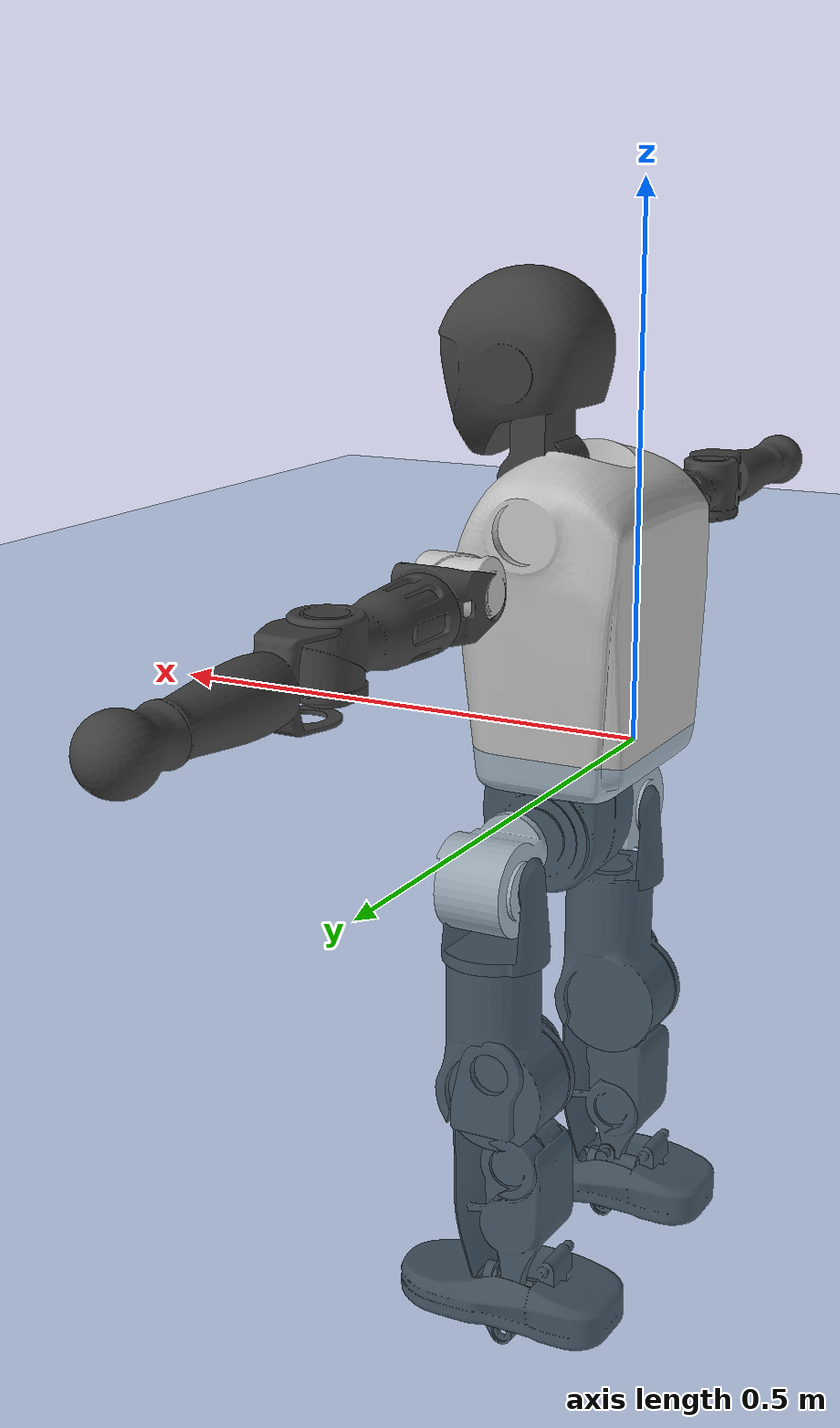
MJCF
<mujoco model="T1">
  <compiler angle="radian" assetdir="assets" balanceinertia="true" inertiafromgeom="false"/>

  <option timestep="0.005" density="1.2" viscosity="2e-05"/>

  <size nkey="1"/>

  <visual>
    <quality shadowsize="8192"/>
    <map shadowclip="0.5"/>
  </visual>

  <default>
    <default class="/">
      <joint armature="0.01" damping="0.01" frictionloss="0.1"/>
      <geom contype="0" conaffinity="0" group="1" solref="-1000 -80"/>
      <site size="0.01 0.005 0.005" group="5"/>
      <general forcelimited="true" biastype="affine" gainprm="25" biasprm="0 -25 -0.6"/>
      <default class="t1">
        <geom rgba="0.25 0.25 0.25 1"/>
        <default class="visual">
          <geom type="mesh" group="2"/>
        </default>
        <default class="collision">
          <geom group="3"/>
        </default>
        <default class="foot">
          <geom size="0.1115 0.05 0.015" type="box" condim="6" group="4" priority="1" solimp="0.015 1 0.015"/>
        </default>
        <default class="reward_collision_sphere">
          <geom group="5" rgba="1 0 0 1"/>
        </default>
      </default>
    </default>
  </default>

  <asset>
    <texture type="skybox" colorspace="auto" name="//unnamed_texture_0" builtin="gradient" rgb1="0.95 0.95 0.95" rgb2="0.95 0.95 0.95" width="100" height="600"/>
    <texture type="2d" colorspace="auto" name="texplane" builtin="checker" rgb1="0.345 0.575 0.748" rgb2="0.345 0.575 0.748" markrgb="1 1 1" width="512" height="512"/>
    <material name="MatPlane" class="/" texture="texplane" texuniform="true" texrepeat="2 2" specular="0.9"/>
    <mesh name="Trunk" class="/" file="Trunk.stl"/>
    <mesh name="H1" class="/" file="H1.stl"/>
    <mesh name="H2" class="/" file="H2.stl"/>
    <mesh name="AL1" class="/" file="AL1.stl"/>
    <mesh name="AL2" class="/" file="AL2.stl"/>
    <mesh name="AL3" class="/" file="AL3.stl"/>
    <mesh name="left_hand_link" class="/" file="left_hand_link.stl"/>
    <mesh name="AR1" class="/" file="AR1.stl"/>
    <mesh name="AR2" class="/" file="AR2.stl"/>
    <mesh name="AR3" class="/" file="AR3.stl"/>
    <mesh name="right_hand_link" class="/" file="right_hand_link.stl"/>
    <mesh name="Waist" class="/" file="Waist.stl"/>
    <mesh name="Hip_Pitch_Left" class="/" file="Hip_Pitch_Left.stl"/>
    <mesh name="Hip_Roll_Left" class="/" file="Hip_Roll_Left.stl"/>
    <mesh name="Hip_Yaw_Left" class="/" file="Hip_Yaw_Left.stl"/>
    <mesh name="Shank_Left" class="/" file="Shank_Left.stl"/>
    <mesh name="Ankle_Cross_Left" class="/" file="Ankle_Cross_Left.stl"/>
    <mesh name="left_foot_link" class="/" file="left_foot_link.stl"/>
    <mesh name="Hip_Pitch_Right" class="/" file="Hip_Pitch_Right.stl"/>
    <mesh name="Hip_Roll_Right" class="/" file="Hip_Roll_Right.stl"/>
    <mesh name="Hip_Yaw_Right" class="/" file="Hip_Yaw_Right.stl"/>
    <mesh name="Shank_Right" class="/" file="Shank_Right.stl"/>
    <mesh name="Ankle_Cross_Right" class="/" file="Ankle_Cross_Right.stl"/>
    <mesh name="right_foot_link" class="/" file="right_foot_link.stl"/>
  </asset>

  <worldbody>
    <geom name="floor" class="/" size="100 100 0.125" type="plane" group="0" material="MatPlane"/>
    <light name="toplight_shadow" class="/" pos="0 0 5" dir="0.0990148 0.0990148 -0.990148" type="directional" ambient="0.04 0.04 0.04" diffuse="0.55 0.55 0.55" specular="0.12 0.12 0.12"/>
    <light name="toplight_fill" class="/" pos="0 0 5" dir="0.0990148 0.0990148 -0.990148" type="directional" castshadow="false" ambient="0.04 0.04 0.04" diffuse="0.3 0.3 0.3" specular="0.08 0.08 0.08"/>
    <body name="trunk" childclass="t1" pos="0.000303831 0.000402503 -0.0108637" quat="1 0.000213594 0.000295014 0.000635102">
      <inertial pos="0.0712822 -0.00106768 0.0912699" quat="0.999195 0.0148399 -0.0258549 -0.0268515" mass="18.5289" diaginertia="0.343237 0.261987 0.0235913"/>
      <joint name="//unnamed_joint_0" type="free" armature="0" damping="0" frictionloss="0"/>
      <geom name="//unnamed_geom_1" class="visual" rgba="0.76 0.76 0.76 1" mesh="Trunk"/>
      <geom name="//unnamed_geom_2" class="collision" size="0.0851153 0.113487 0.170231" pos="0.0772548 0 0.0990027" type="box"/>
      <geom name="//unnamed_geom_3" class="reward_collision_sphere" size="0.13051" pos="0.0772548 0 0.0825023"/>
      <geom name="//unnamed_geom_4" class="reward_collision_sphere" size="0.0170231" pos="0.0772548 0.109821 0"/>
      <geom name="//unnamed_geom_5" class="reward_collision_sphere" size="0.0170231" pos="0.0772548 -0.109821 0"/>
      <geom name="//unnamed_geom_6" class="reward_collision_sphere" size="0.0170231" pos="0.0772548 0.138245 0.148504"/>
      <geom name="//unnamed_geom_7" class="reward_collision_sphere" size="0.0170231" pos="0.0772548 -0.138245 0.148504"/>
      <site name="imu" pos="-0.0720383 0.0614883 -0.0300367" size="0.0113487"/>
      <camera name="track" pos="0 -2.58402 0" quat="0.707107 0.707107 0 0" mode="trackcom"/>
      <camera name="ego_camera" pos="0.157085 0 0.34651" quat="-0.5 -0.5 0.5 0.5"/>
      <body name="H1" pos="0.085923 0.00795279 0.1978" quat="0.999992 0.000553357 -0.003794 0.000551531">
        <inertial pos="-0.00182868 0.000911526 0.0504016" quat="0.762348 -0.0347139 0.00600801 0.646208" mass="0.611982" diaginertia="0.000722034 0.000780597 4.73331e-05"/>
        <joint name="AAHead_yaw" pos="0 0 0" axis="0.00398537 -0.00595731 0.999974" range="-1.68926 1.40083" armature="0.00897316" damping="0.00912083" frictionloss="0.136565"/>
        <geom name="//unnamed_geom_8" class="visual" mesh="H1"/>
        <body name="H2" pos="-0.000148019 0.0129296 0.0503343" quat="1 0.000202746 9.502e-05 9.20103e-05">
          <inertial pos="-0.00476586 -0.0118458 0.0722868" quat="0.985719 0.103899 -0.0873037 -0.099701" mass="0.757735" diaginertia="0.00671255 0.00734154 0.000676527"/>
          <joint name="Head_pitch" pos="0 0 0" axis="-0.0135742 -0.999817 -0.0135101" range="-1.23951 0.168016" armature="0.0184744" damping="0.0465729" frictionloss="0.119076"/>
          <geom name="//unnamed_geom_9" class="visual" mesh="H2"/>
          <geom name="//unnamed_geom_10" class="collision" size="0.0907897" pos="0.0128758 0 0.0907525"/>
          <geom name="//unnamed_geom_11" class="reward_collision_sphere" size="0.102138" pos="0.0257516 0 0.0825023"/>
        </body>
      </body>
      <body name="AL1" pos="0.0844144 0.138864 0.180518" quat="0.999996 0.000312045 -0.00240684 -0.00150782">
        <inertial pos="-0.0073891 0.0511741 -0.0130762" quat="0.480435 0.496268 -0.531507 0.490306" mass="0.815832" diaginertia="0.00503932 0.00474551 0.000104267"/>
        <joint name="Left_Shoulder_Pitch" pos="0 0 0" axis="-0.00951173 0.999747 -0.0203921" stiffness="0.0588221" range="-3.05755 1.40193" armature="0.00976088" damping="0.015707" frictionloss="0.106507"/>
        <geom name="//unnamed_geom_12" class="visual" rgba="0.76 0.76 0.76 1" mesh="AL1"/>
        <body name="AL2" pos="-0.000542072 0.0480989 -0.00398731" quat="0.999974 -0.00607122 -0.00192855 -0.00344581">
          <inertial pos="-0.001392 0.0485008 0.0104918" quat="0.493103 0.50519 -0.49387 0.507667" mass="0.158652" diaginertia="0.00119723 0.000898363 5.8333e-05"/>
          <joint name="Left_Shoulder_Roll" pos="0 0 0" axis="-0.997156 0.0542221 -0.0523384" stiffness="0.0370858" range="-1.40136 1.75994" armature="0.00727486" damping="0.0749076" frictionloss="0.143885"/>
          <geom name="//unnamed_geom_13" class="visual" mesh="AL2"/>
          <body name="AL3" pos="-0.00550745 0.0656315 -0.0018272" quat="0.999972 0.00337502 -0.00582777 0.00331409">
            <inertial pos="-0.00117561 0.109699 0.000716647" quat="0.676577 0.735311 0.0386939 -0.00794659" mass="1.2558" diaginertia="0.0384049 0.0384318 0.000215908"/>
            <joint name="Left_Elbow_Pitch" pos="0 0 0" axis="-0.00388394 -0.999992 0.000532176" range="-2.13936 2.27417" armature="0.0114438" damping="0.00554055" frictionloss="0.117104"/>
            <geom name="//unnamed_geom_14" class="visual" mesh="AL3"/>
            <geom name="//unnamed_geom_15" class="collision" size="0.0340461 0.0851153" pos="0 0.0646005 0" quat="0.707105 0.707108 0 0" type="cylinder"/>
            <geom name="//unnamed_geom_16" class="reward_collision_sphere" size="0.0408554"/>
            <body name="left_hand_link" pos="0.00264361 0.176032 -0.00880636" quat="0.999978 -0.00240864 9.32183e-05 -0.00616648">
              <inertial pos="0.00225839 0.148045 0.0131618" quat="0.706986 0.704468 0.00957701 -0.0616729" mass="0.577067" diaginertia="0.0311592 0.0348712 0.000106079"/>
              <joint name="Left_Elbow_Yaw" pos="0 0 0" axis="-0.0525197 0.0254788 0.998295" range="-2.39908 -0.216039" armature="0.01086" damping="0.0502549" frictionloss="0.0317908"/>
              <geom name="//unnamed_geom_17" class="visual" mesh="left_hand_link"/>
              <geom name="//unnamed_geom_18" class="collision" size="0.0340461 0.0993012" pos="0 0.167961 0" quat="0.707105 0.707108 0 0" type="cylinder"/>
              <geom name="//unnamed_geom_19" class="reward_collision_sphere" size="0.0567435"/>
              <geom name="//unnamed_geom_20" class="reward_collision_sphere" size="0.0397205" pos="0 0.142121 0"/>
              <geom name="//unnamed_geom_21" class="reward_collision_sphere" size="0.0397205" pos="0 0.277782 0"/>
            </body>
          </body>
        </body>
      </body>
      <body name="AR1" pos="0.085811 -0.14703 0.180433" quat="0.999999 -0.000914102 0.00110916 -8.16919e-05">
        <inertial pos="-0.00110371 -0.0547373 -0.00149601" quat="0.502875 0.497192 -0.505911 0.493934" mass="0.718898" diaginertia="0.00490999 0.00494569 0.000113461"/>
        <joint name="Right_Shoulder_Pitch" pos="0 0 0" axis="-0.00470289 -0.999319 -0.0366054" range="-1.4907 3.34919" armature="0.011273" damping="0" frictionloss="0.106112"/>
        <geom name="//unnamed_geom_22" class="visual" rgba="0.76 0.76 0.76 1" mesh="AR1"/>
        <body name="AR2" pos="0.0130592 -0.0712221 0.00110413" quat="0.999994 0.00048134 -0.00196027 -0.00296861">
          <inertial pos="0.0129764 -0.0549123 0.00989151" quat="0.506989 0.478084 -0.544192 0.467175" mass="0.211391" diaginertia="0.00152698 0.00136716 6.58755e-05"/>
          <joint name="Right_Shoulder_Roll" pos="0 0 0" axis="-0.999892 0.00757765 0.0125567" range="-1.88644 1.83581" armature="0.0116873" damping="0" frictionloss="0.1861"/>
          <geom name="//unnamed_geom_23" class="visual" mesh="AR2"/>
          <body name="AR3" pos="0.00741137 -0.0924304 -0.0123253" quat="1 -0.000103052 0.000698407 -0.000198976">
            <inertial pos="0.000839259 -0.106156 9.31338e-05" quat="0.72049 0.689703 0.070332 -0.0160564" mass="1.65326" diaginertia="0.0505631 0.0415897 0.000252084"/>
            <joint name="Right_Elbow_Pitch" pos="0 0 0" axis="-0.00381135 0.999992 0.00112423" range="-2.29779 2.24451" armature="0.0128273" damping="0" frictionloss="0.0367932"/>
            <geom name="//unnamed_geom_24" class="visual" mesh="AR3"/>
            <geom name="//unnamed_geom_25" class="collision" size="0.0340461 0.0851153" pos="0 -0.0646005 0" quat="0.707105 0.707108 0 0" type="cylinder"/>
            <geom name="//unnamed_geom_26" class="reward_collision_sphere" size="0.0408554"/>
            <body name="right_hand_link" pos="0.0122259 -0.187468 -0.00465553" quat="0.999993 1.16105e-05 -0.00236499 -0.00287477">
              <inertial pos="-0.00261408 -0.141485 -0.0125233" quat="0.689425 0.721943 0.00617281 -0.0587613" mass="0.544577" diaginertia="0.0377238 0.0346497 9.50676e-05"/>
              <joint name="Right_Elbow_Yaw" pos="0 0 0" axis="-0.00471277 0.00449976 0.999979" range="0.216277 2.37583" armature="0.00259142" damping="0.0217782" frictionloss="0.118095"/>
              <geom name="//unnamed_geom_27" class="visual" mesh="right_hand_link"/>
              <geom name="//unnamed_geom_28" class="collision" size="0.0340461 0.0993012" pos="0 -0.167961 0" quat="0.707105 0.707108 0 0" type="cylinder"/>
              <geom name="//unnamed_geom_29" class="reward_collision_sphere" size="0.0567435"/>
              <geom name="//unnamed_geom_30" class="reward_collision_sphere" size="0.0397205" pos="0 -0.142121 0"/>
              <geom name="//unnamed_geom_31" class="reward_collision_sphere" size="0.0397205" pos="0 -0.277782 0"/>
            </body>
          </body>
        </body>
      </body>
      <body name="Waist" pos="0.0776588 -0.0051109 -0.0845578" quat="1 -0.000129247 8.79449e-05 7.16059e-05">
        <inertial pos="-0.0103628 -0.00145734 0.00726279" quat="0.981575 0.0315138 -0.188458 0.00065391" mass="3.80164" diaginertia="0.0215447 0.025314 0.0019979"/>
        <joint name="Waist" pos="0 0 0" axis="-0.0215798 0.00827262 0.999733" range="-1.86197 1.44453" armature="0.0174851" damping="0.00754048" frictionloss="0.121205"/>
        <geom name="//unnamed_geom_32" class="visual" mesh="Waist"/>
        <body name="Hip_Pitch_Left" pos="0.0129983 0.124761 -0.00375064" quat="0.999977 0.00296416 0.000765681 -0.00608861">
          <inertial pos="0.00908787 -0.0236543 -0.016571" quat="0.975503 0.219605 0.0126733 -0.00275037" mass="1.72017" diaginertia="0.00714845 0.00473967 0.000538999"/>
          <joint name="Left_Hip_Pitch" pos="0 0 0" axis="-0.0145077 0.999891 -0.00262998" range="-1.78008 1.39053" armature="0.0118099" damping="0" frictionloss="0.111203"/>
          <geom name="//unnamed_geom_33" class="visual" rgba="0.76 0.76 0.76 1" mesh="Hip_Pitch_Left"/>
          <body name="Hip_Roll_Left" pos="-0.00780661 0.000604191 -0.0118095" quat="0.999981 0.0046612 -0.00103068 -0.00381553">
            <inertial pos="0.00145665 -0.000492288 -0.0400805" quat="0.706624 -0.00567113 -0.00842348 0.707516" mass="0.573374" diaginertia="0.0062319 0.0063364 0.000227101"/>
            <joint name="Left_Hip_Roll" pos="0 0 0" axis="-0.999999 -0.000548362 0.000860528" stiffness="0.0415819" range="-1.64726 0.291773" armature="0.0121566" damping="0.00599159" frictionloss="0.0516323"/>
            <geom name="//unnamed_geom_34" class="visual" mesh="Hip_Roll_Left"/>
            <geom name="//unnamed_geom_35" class="reward_collision_sphere" size="0.0624179"/>
            <body name="Hip_Yaw_Left" pos="0.00354316 -0.00748171 -0.0699643" quat="0.99999 0.00223283 0.00312363 -0.00207921">
              <inertial pos="-0.0105908 -0.000924356 -0.0743911" quat="0.738306 -0.0694582 -0.0242167 0.670442" mass="3.42337" diaginertia="0.0882058 0.107067 0.000892019"/>
              <joint name="Left_Hip_Yaw" pos="0 0 0" axis="0.0133738 0.0600271 -0.998107" range="-1.00985 0.970173" armature="0.0119495" damping="0.0241873" frictionloss="0.115351"/>
              <geom name="//unnamed_geom_36" class="visual" mesh="Hip_Yaw_Left"/>
              <geom name="//unnamed_geom_37" class="collision" size="0.0567435 0.0907897" type="cylinder"/>
              <body name="Shank_Left" pos="-0.0184288 0.000102186 -0.108202" quat="0.999992 0.00111549 0.00371289 0.00029071">
                <inertial pos="-0.007734 -0.00479628 -0.104481" quat="0.994077 0.0112634 -0.0746117 0.0782086" mass="2.41489" diaginertia="0.138768 0.113788 0.000736409"/>
                <joint name="Left_Knee_Pitch" pos="0 0 0" axis="-0.00381821 0.999978 -0.00536093" range="-0.114622 2.32919" armature="0.00852617" damping="0.0086341" frictionloss="0.0462706"/>
                <geom name="//unnamed_geom_38" class="visual" mesh="Shank_Left"/>
                <geom name="//unnamed_geom_39" class="collision" size="0.0567435 0.0851153" pos="0 0 -0.0990027" type="cylinder"/>
                <geom name="//unnamed_geom_40" class="reward_collision_sphere" size="0.0737666"/>
                <body name="Ankle_Cross_Left" pos="0.00656511 -0.0018495 -0.235334" quat="0.999991 -0.00318051 0.00160224 0.00240977">
                  <inertial pos="-0.00274619 -0.00740693 0.00806176" quat="0.466103 0.547089 0.545862 0.430668" mass="0.0872535" diaginertia="7.33861e-05 8.69384e-05 4.02658e-06"/>
                  <joint name="Left_Ankle_Pitch" pos="0 0 0" axis="-0.0214402 0.999243 0.0324508" stiffness="0.00739862" range="-0.573171 0.184143" armature="0.0156567" damping="0" frictionloss="0.0441129"/>
                  <geom name="//unnamed_geom_41" class="visual" mesh="Ankle_Cross_Left"/>
                  <body name="left_foot_link" pos="-0.0123797 -0.000402778 0.00299699" quat="0.999996 0.00143764 0.001293 0.00182756">
                    <inertial pos="0.00460915 0.0132489 -0.0108841" quat="0.000272699 0.62011 -0.000326225 0.784515" mass="1.07265" diaginertia="0.00828874 0.00842827 0.000774096"/>
                    <joint name="Left_Ankle_Roll" pos="0 0 0" axis="-0.9997 0.00349434 0.0242609" range="-0.264378 0.561226" armature="0.0121349" damping="0.0338492" frictionloss="0.104144"/>
                    <geom name="//unnamed_geom_42" class="visual" mesh="left_foot_link"/>
                    <geom name="left_foot" class="foot" size="0.103341 0.0532541 0.0126733" pos="0.0128758 0 -0.0123753"/>
                    <geom name="//unnamed_geom_44" class="reward_collision_sphere" size="0.0590133" pos="0.0128758 0 -0.0123753"/>
                    <geom name="//unnamed_geom_45" class="reward_collision_sphere" size="0.0340461" pos="0.12232 -0.0297162 -0.0123753"/>
                    <geom name="//unnamed_geom_46" class="reward_collision_sphere" size="0.0340461" pos="-0.0901306 -0.0297162 -0.0123753"/>
                    <site name="left_foot" class="foot" pos="0.0128758 0 -0.0123753" size="0.0113487"/>
                  </body>
                </body>
              </body>
            </body>
          </body>
        </body>
        <body name="Hip_Pitch_Right" pos="-0.000882905 -0.135926 0.000581354" quat="0.999992 -0.00209764 0.0030058 -0.00168071">
          <inertial pos="0.00249487 0.00508555 -0.028083" quat="0.967445 -0.249925 -0.0387921 0.00908421" mass="1.42035" diaginertia="0.00602246 0.00491264 0.000391247"/>
          <joint name="Right_Hip_Pitch" pos="0 0 0" axis="0.0534687 -0.998472 0.0139369" stiffness="0.0356521" range="-1.57857 1.76728" armature="0.00537643" damping="0.0249906" frictionloss="0.0683237"/>
          <geom name="//unnamed_geom_47" class="visual" rgba="0.76 0.76 0.76 1" mesh="Hip_Pitch_Right"/>
          <body name="Hip_Roll_Right" pos="-0.000880407 0.00727345 -0.0211736" quat="0.999973 0.00579096 -0.00448076 -0.00101174">
            <inertial pos="-0.0129421 -0.00518712 -0.0348436" quat="0.680519 -0.0239184 -0.0435465 0.731045" mass="0.638048" diaginertia="0.00779364 0.00585691 0.000225276"/>
            <joint name="Right_Hip_Roll" pos="0 0 0" axis="-0.999979 -0.00450826 0.00458656" stiffness="0.00401948" range="-0.205302 1.35136" armature="0.0109532" damping="0.00455861" frictionloss="0.11577"/>
            <geom name="//unnamed_geom_48" class="visual" mesh="Hip_Roll_Right"/>
            <geom name="//unnamed_geom_49" class="reward_collision_sphere" size="0.0624179"/>
            <body name="Hip_Yaw_Right" pos="-0.00242822 0.0105277 -0.0647707" quat="0.99998 0.000677489 -0.00347058 -0.00528975">
              <inertial pos="-0.0177515 0.0025522 -0.0787176" quat="0.742669 -0.0502442 -0.0304374 0.667077" mass="2.48922" diaginertia="0.0647023 0.0626247 0.000761092"/>
              <joint name="Right_Hip_Yaw" pos="0 0 0" axis="0.0186668 0.0187256 -0.99965" range="-1.03536 1.29179" armature="0.0103608" damping="0.00843395" frictionloss="0.186213"/>
              <geom name="//unnamed_geom_50" class="visual" mesh="Hip_Yaw_Right"/>
              <geom name="//unnamed_geom_51" class="collision" size="0.0567435 0.0907897" type="cylinder"/>
              <body name="Shank_Right" pos="-0.00458743 -0.00948639 -0.104143" quat="0.99998 -0.00600018 0.00144013 -0.00124924">
                <inertial pos="-0.0198142 -0.00803988 -0.0989234" quat="0.999288 0.00063781 -0.0243101 -0.0288611" mass="2.20555" diaginertia="0.125645 0.149164 0.000875815"/>
                <joint name="Right_Knee_Pitch" pos="0 0 0" axis="0.00546229 -0.999884 0.0142176" range="-2.25472 -0.00280545" armature="0.0107996" damping="0" frictionloss="0.0768112"/>
                <geom name="//unnamed_geom_52" class="visual" mesh="Shank_Right"/>
                <geom name="//unnamed_geom_53" class="collision" size="0.0567435 0.0851153" pos="0 0 -0.0990027" type="cylinder"/>
                <geom name="//unnamed_geom_54" class="reward_collision_sphere" size="0.0737666"/>
                <body name="Ankle_Cross_Right" pos="-0.000243734 0.00078947 -0.220696" quat="0.999981 0.00469568 0.00118591 0.00379782">
                  <inertial pos="-0.00524943 -0.000240282 -0.0064123" quat="0.441443 0.55171 0.531074 0.467659" mass="0.138356" diaginertia="0.000114949 0.000105123 4.98046e-06"/>
                  <joint name="Right_Ankle_Pitch" pos="0 0 0" axis="0.0178093 -0.997228 -0.0722368" range="-0.33956 1.06674" armature="0.00512226" damping="0.0527034" frictionloss="0.196227"/>
                  <geom name="//unnamed_geom_55" class="visual" mesh="Ankle_Cross_Right"/>
                  <body name="right_foot_link" pos="-0.00981007 0.00134729 -0.0149684" quat="0.999993 -0.00356903 0.00135782 -0.000632325">
                    <inertial pos="-0.00444609 -0.000131438 0.00439616" quat="0.00679579 0.613848 -0.00151563 0.789394" mass="0.792033" diaginertia="0.00987186 0.00777877 0.000839376"/>
                    <joint name="Right_Ankle_Roll" pos="0 0 0" axis="-0.998505 -0.0546521 -0.00079934" range="-0.735629 0.298715" armature="0.0177425" damping="0.010096" frictionloss="0.106551"/>
                    <geom name="//unnamed_geom_56" class="visual" mesh="right_foot_link"/>
                    <geom name="right_foot" class="foot" size="0.19292 0.0356999 0.0156562" pos="0.0128758 0 -0.0123753"/>
                    <geom name="//unnamed_geom_58" class="reward_collision_sphere" size="0.0453948"/>
                    <geom name="//unnamed_geom_59" class="reward_collision_sphere" size="0.0340461" pos="0.0128758 0 -0.0123753"/>
                    <geom name="//unnamed_geom_60" class="reward_collision_sphere" size="0.0340461" pos="0.12232 0.0297162 -0.0123753"/>
                    <geom name="//unnamed_geom_61" class="reward_collision_sphere" size="0.0340461" pos="-0.0901306 0.0297162 -0.0123753"/>
                    <site name="right_foot" class="foot" pos="0.0128758 0 -0.0123753" size="0.0113487"/>
                  </body>
                </body>
              </body>
            </body>
          </body>
        </body>
      </body>
    </body>
  </worldbody>

  <contact>
    <pair class="/" geom1="floor" geom2="left_foot" name="//unnamed_contact_0"/>
    <pair class="/" geom1="floor" geom2="right_foot" name="//unnamed_contact_1"/>
  </contact>

  <actuator>
    <general name="AAHead_yaw" class="/" joint="AAHead_yaw" forcerange="-10.0343 10.0343" gainprm="20.8212" biasprm="0 -20.8212 -0.588815"/>
    <general name="Head_pitch" class="/" joint="Head_pitch" forcerange="-7.39202 7.39202" gainprm="20.8212" biasprm="0 -20.8212 -0.588815"/>
    <general name="Left_Shoulder_Pitch" class="/" joint="Left_Shoulder_Pitch" forcerange="-19.4886 19.4886" gainprm="20.8212" biasprm="0 -20.8212 -0.588815"/>
    <general name="Left_Shoulder_Roll" class="/" joint="Left_Shoulder_Roll" forcerange="-19.7364 19.7364" gainprm="20.8212" biasprm="0 -20.8212 -0.588815"/>
    <general name="Left_Elbow_Pitch" class="/" joint="Left_Elbow_Pitch" forcerange="-11.62 11.62" gainprm="20.8212" biasprm="0 -20.8212 -0.588815"/>
    <general name="Left_Elbow_Yaw" class="/" joint="Left_Elbow_Yaw" forcerange="-22.5996 22.5996" gainprm="20.8212" biasprm="0 -20.8212 -0.588815"/>
    <general name="Right_Shoulder_Pitch" class="/" joint="Right_Shoulder_Pitch" forcerange="-21.2071 21.2071" gainprm="20.8212" biasprm="0 -20.8212 -0.588815"/>
    <general name="Right_Shoulder_Roll" class="/" joint="Right_Shoulder_Roll" forcerange="-20.7864 20.7864" gainprm="20.8212" biasprm="0 -20.8212 -0.588815"/>
    <general name="Right_Elbow_Pitch" class="/" joint="Right_Elbow_Pitch" forcerange="-23.9437 23.9437" gainprm="20.8212" biasprm="0 -20.8212 -0.588815"/>
    <general name="Right_Elbow_Yaw" class="/" joint="Right_Elbow_Yaw" forcerange="-11.2793 11.2793" gainprm="20.8212" biasprm="0 -20.8212 -0.588815"/>
    <general name="Waist" class="/" joint="Waist" forcerange="-25.6918 25.6918" gainprm="20.8212" biasprm="0 -20.8212 -0.588815"/>
    <general name="Left_Hip_Pitch" class="/" joint="Left_Hip_Pitch" forcerange="-78.9186 78.9186" gainprm="20.8212" biasprm="0 -20.8212 -0.588815"/>
    <general name="Left_Hip_Roll" class="/" joint="Left_Hip_Roll" forcerange="-30.0654 30.0654" gainprm="20.8212" biasprm="0 -20.8212 -0.588815"/>
    <general name="Left_Hip_Yaw" class="/" joint="Left_Hip_Yaw" forcerange="-27.8272 27.8272" gainprm="20.8212" biasprm="0 -20.8212 -0.588815"/>
    <general name="Left_Knee_Pitch" class="/" joint="Left_Knee_Pitch" forcerange="-37.0256 37.0256" gainprm="20.8212" biasprm="0 -20.8212 -0.588815"/>
    <general name="Left_Ankle_Pitch" class="/" joint="Left_Ankle_Pitch" forcerange="-20.4574 20.4574" gainprm="20.8212" biasprm="0 -20.8212 -0.588815"/>
    <general name="Left_Ankle_Roll" class="/" joint="Left_Ankle_Roll" forcerange="-16.1562 16.1562" gainprm="20.8212" biasprm="0 -20.8212 -0.588815"/>
    <general name="Right_Hip_Pitch" class="/" joint="Right_Hip_Pitch" forcerange="-25.2785 25.2785" gainprm="20.8212" biasprm="0 -20.8212 -0.588815"/>
    <general name="Right_Hip_Roll" class="/" joint="Right_Hip_Roll" forcerange="-29.5194 29.5194" gainprm="20.8212" biasprm="0 -20.8212 -0.588815"/>
    <general name="Right_Hip_Yaw" class="/" joint="Right_Hip_Yaw" forcerange="-27.8853 27.8853" gainprm="20.8212" biasprm="0 -20.8212 -0.588815"/>
    <general name="Right_Knee_Pitch" class="/" joint="Right_Knee_Pitch" forcerange="-45.3782 45.3782" gainprm="20.8212" biasprm="0 -20.8212 -0.588815"/>
    <general name="Right_Ankle_Pitch" class="/" joint="Right_Ankle_Pitch" forcerange="-28.4332 28.4332" gainprm="20.8212" biasprm="0 -20.8212 -0.588815"/>
    <general name="Right_Ankle_Roll" class="/" joint="Right_Ankle_Roll" forcerange="-25.6556 25.6556" gainprm="20.8212" biasprm="0 -20.8212 -0.588815"/>
  </actuator>

  <sensor>
    <gyro site="imu" name="imu_angular_velocity"/>
    <velocimeter site="imu" name="imu_linear_velocity"/>
    <framelinvel objtype="site" objname="left_foot" name="left_foot_global_linear_velocity"/>
    <framelinvel objtype="site" objname="right_foot" name="right_foot_global_linear_velocity"/>
  </sensor>

  <keyframe>
    <key name="home" qpos="0 0 0.6385 1 0 0 0 0 0 0 1.4 0 -0.4 0 -1.4 0 0.4 0 -0.4 0 0 0.8 -0.4 0 0.4 0 0 -0.8 0.4 0"/>
  </keyframe>
</mujoco>
